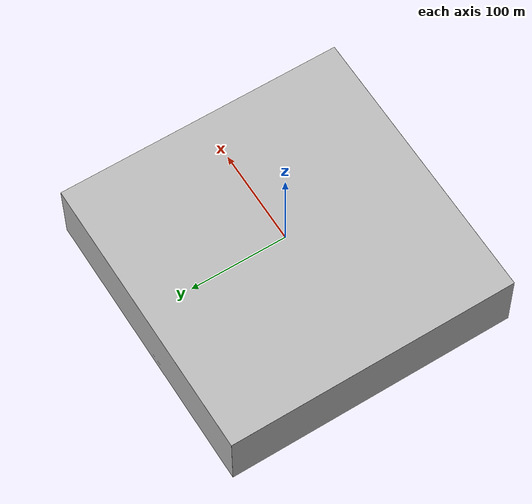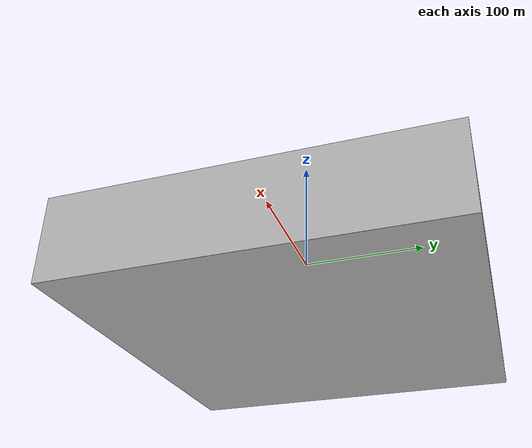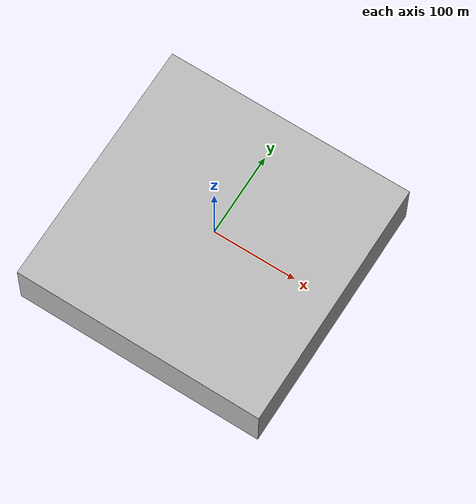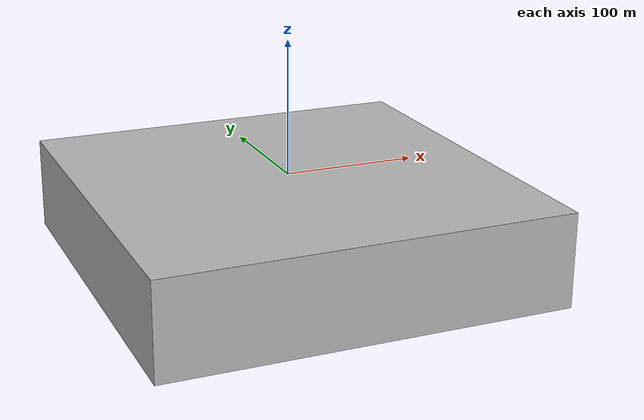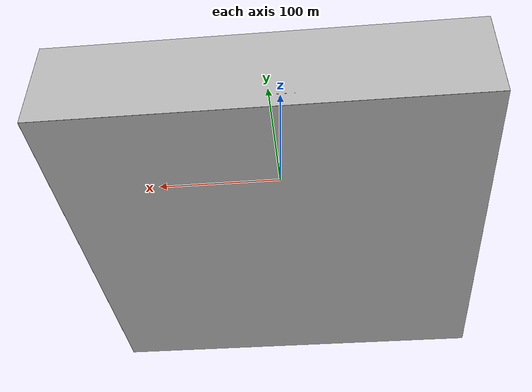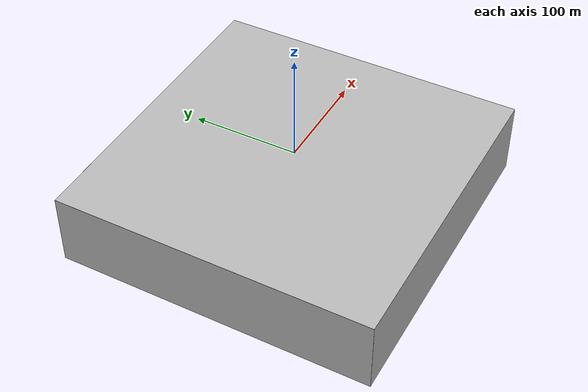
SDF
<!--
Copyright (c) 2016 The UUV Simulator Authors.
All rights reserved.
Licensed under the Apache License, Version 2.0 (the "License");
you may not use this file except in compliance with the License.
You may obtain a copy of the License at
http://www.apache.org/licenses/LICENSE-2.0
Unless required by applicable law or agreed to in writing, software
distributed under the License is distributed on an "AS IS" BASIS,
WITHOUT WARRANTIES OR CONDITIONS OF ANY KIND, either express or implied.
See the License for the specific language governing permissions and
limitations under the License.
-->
<?xml version="1.0" ?>
<sdf version="1.5">
  <model name="herkules_seabed">
    <static>true</static>
    <link name="seabed">
      <collision name="seabed">
        <pose>0 0 -60 0 0 0</pose>
        <geometry>
          <mesh>
            <uri>model://herkules_seabed/meshes/herkules_seabed.dae</uri>
            <scale>3 3 1.0</scale>
          </mesh>
        </geometry>
      </collision>

      <visual name="seabed">
        <cast_shadows>true</cast_shadows>
        <pose>0 0 -60 0 0 0</pose>
        <geometry>
          <mesh>
            <uri>model://herkules_seabed/meshes/herkules_seabed.dae</uri>
            <scale>3 3 1.0</scale>
          </mesh>
        </geometry>
        <material>
          <script>
            <uri>file://Media/materials/scripts/sand.material</uri>
            <name>UUVSimulator/SandAndStones</name>
          </script>
        </material>
      </visual>
    </link>

    <link name="ocean_link">
      <visual name="surface">
        <pose>0 0 0 0 0 0</pose>
        <cast_shadows>false</cast_shadows>
        <geometry>
          <box>
            <size>300 300 0.1</size>
          </box>
        </geometry>
        <material>
          <script>
            <uri>file://Media/materials/scripts/water.material</uri>
            <name>UUVSimulator/StaticWater</name>
          </script>
        </material>
      </visual>

      <visual name="bottom">
        <pose>0 0 -70.0 0 0 0</pose>
        <geometry>
          <box>
            <size>300 300 0.1</size>
          </box>
        </geometry>
        <material>
          <script>
            <uri>file://Media/materials/scripts/water.material</uri>
            <name>UUVSimulator/SeaWall</name>
          </script>
        </material>
      </visual>

      <visual name="north_wall">
        <pose>0 150 -35.0 0 0 0</pose>
        <geometry>
          <box>
            <size>300 0.1 70</size>
          </box>
        </geometry>
        <material>
          <script>
            <uri>file://Media/materials/scripts/water.material</uri>
            <name>UUVSimulator/SeaWall</name>
          </script>
        </material>
      </visual>

      <visual name="south_wall">
        <pose>0 -150 -35.0 0 0 0</pose>
        <geometry>
          <box>
            <size>300 0.1 70</size>
          </box>
        </geometry>
        <material>
          <script>
            <uri>file://Media/materials/scripts/water.material</uri>
            <name>UUVSimulator/SeaWall</name>
          </script>
        </material>
      </visual>

      <visual name="east_wall">
        <pose>150 0 -35.0 0 0 0</pose>
        <geometry>
          <box>
            <size>0.1 300 70</size>
          </box>
        </geometry>
        <material>
          <script>
            <uri>file://Media/materials/scripts/water.material</uri>
            <name>UUVSimulator/SeaWall</name>
          </script>
        </material>
      </visual>

      <visual name="west_wall">
        <pose>-150 0 -35.0 0 0 0</pose>
        <geometry>
          <box>
            <size>0.1 300 70</size>
          </box>
        </geometry>
        <material>
          <script>
            <uri>file://Media/materials/scripts/water.material</uri>
            <name>UUVSimulator/SeaWall</name>
          </script>
        </material>
      </visual>
    </link>
  </model>
</sdf>
